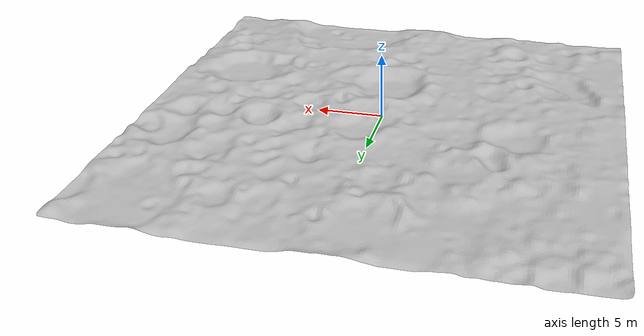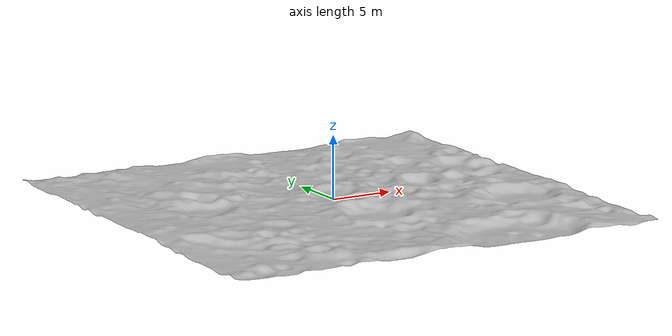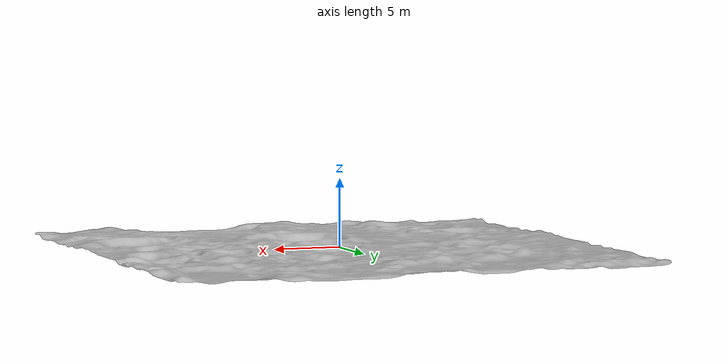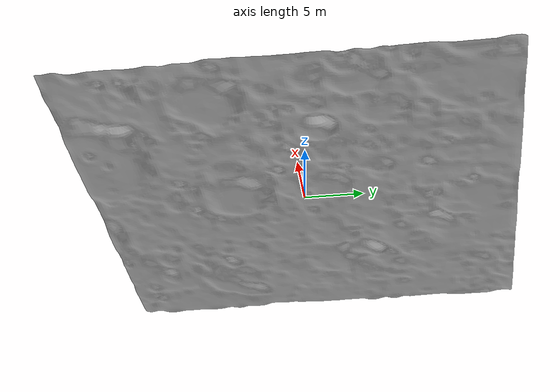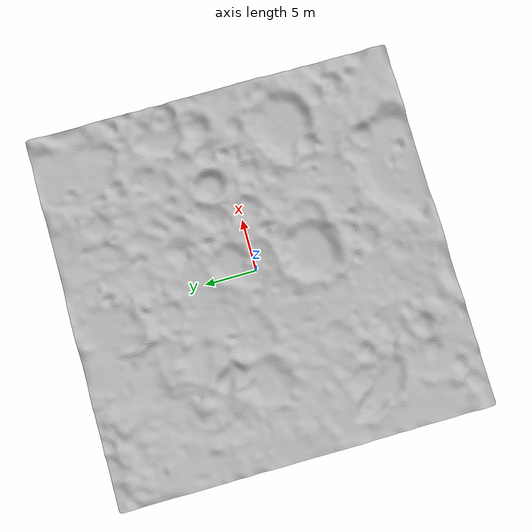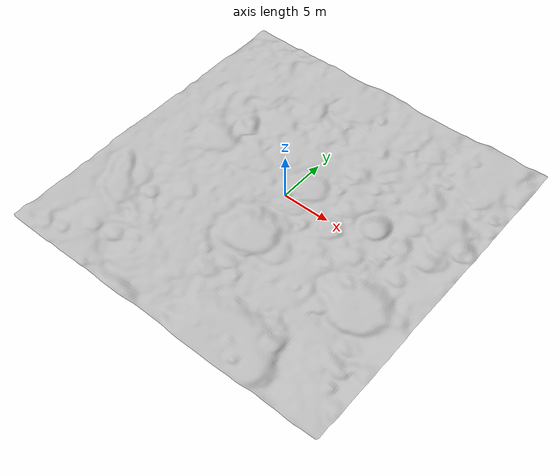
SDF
<?xml version='1.0'?>
<sdf version="1.11">
    <model name='moon_60S_30S'>
        <pose frame=''>0 0 0 0 0 0</pose>
        <static>1</static>
        <link name='link'>
        <collision name='collision'>
            <geometry>
                <mesh>
                    <uri>meshes/moon_005.stl</uri>
                </mesh>
            </geometry>
        </collision>
        <visual name='visual'>
            <cast_shadows>1</cast_shadows>
            <geometry>
                <mesh>
                    <uri>meshes/moon_005.stl</uri>
                </mesh>
            </geometry>
        </visual>
        </link>
    </model>
</sdf>
